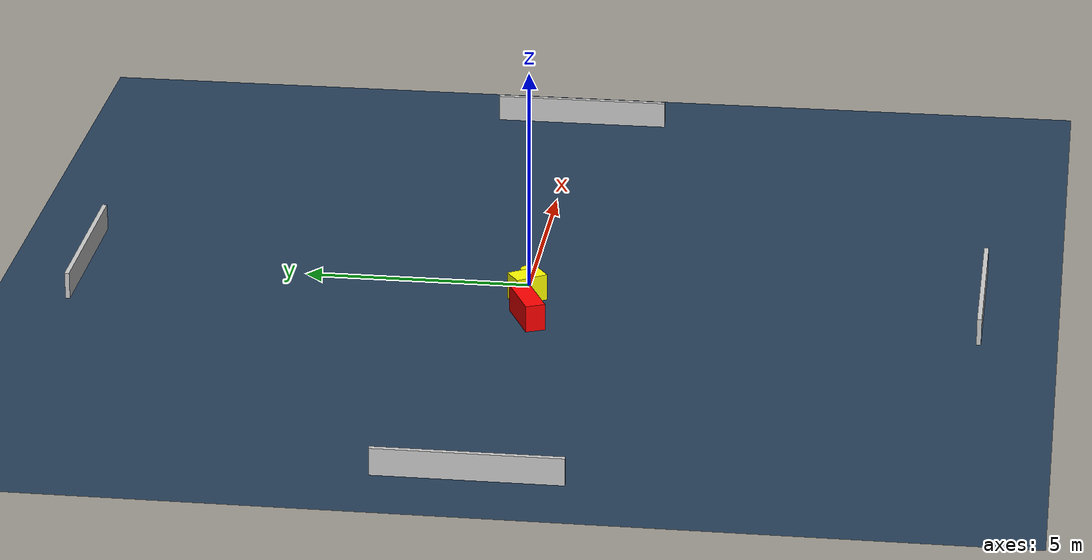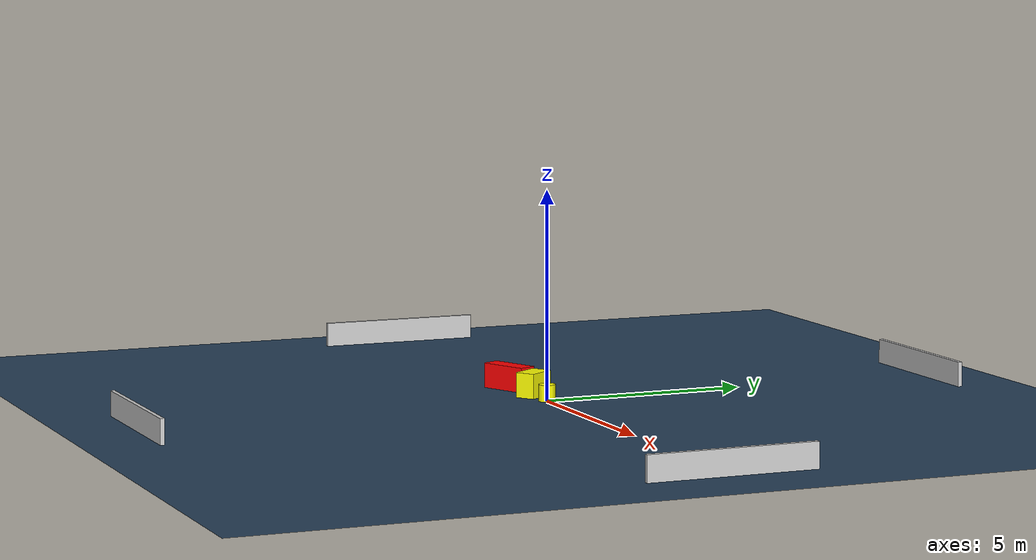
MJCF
<?xml version="1.0" ?>
<mujoco model="generated_environment">
  <option timestep="0.01" integrator="RK4" cone="elliptic"/>
  <default>
    <geom density="1"/>
  </default>
  <asset>
    <texture builtin="gradient" height="3072" name="skybox" rgb1="0.3 0.5 0.7" rgb2="0 0 0" type="skybox" width="512"/>
    <texture builtin="checker" height="300" name="groundplane" rgb1="0.2 0.3 0.4" rgb2="0.1 0.2 0.3" type="2d" width="300"/>
    <material name="groundplane" reflectance="0.2" texrepeat="5 5" texture="groundplane"/>
  </asset>
  <worldbody>
    <light dir="0 0 -1" directional="true" pos="0 0 1.5"/>
    <geom condim="3" friction="0.5 0.005 0.001" material="groundplane" name="floor" pos="0 0 0" size="0 0 0.05" type="plane"/>
    <body name="walls">
      <geom name="wall_1" condim="4" pos="-10.0 0.0 0.3" rgba="0.800000011920929 0.800000011920929 0.800000011920929 1.0" size="0.05 2.0 0.3" type="box"/>
      <geom name="wall_2" condim="4" pos="10.0 0.0 0.3" rgba="0.800000011920929 0.800000011920929 0.800000011920929 1.0" size="0.05 2.0 0.3" type="box"/>
      <geom name="wall_3" condim="4" pos="0.0 -10.0 0.3" rgba="0.800000011920929 0.800000011920929 0.800000011920929 1.0" size="2.0 0.05 0.3" type="box"/>
      <geom name="wall_4" condim="4" pos="0.0 10.0 0.3" rgba="0.800000011920929 0.800000011920929 0.800000011920929 1.0" size="2.0 0.05 0.3" type="box"/>
    </body>
    <body name="robot">
      <joint name="joint_x" type="slide" pos="0 0 0" axis="1 0 0"/>
      <joint name="joint_y" type="slide" pos="0 0 0" axis="0 1 0"/>
      <geom name="robot" type="cylinder" pos="0.0 0.0 0.2" size="0.2 0.2 0.0" mass="5.0" friction="1.0 0.005 0.0001" condim="4" rgba="1.0 1.0 0.0 1.0"/>
    </body>
    <body name="obstacle_1_movable">
      <geom name="obstacle_1_movable" condim="4" pos="-0.745016888523192 -0.0435739198485436 0.3" euler="0 0 124.15926531959909" friction="0.0 0.005 0.001" rgba="1.0 1.0 0.0 1.0" size="0.36877912598160456 0.24408728349028772 0.3" type="box" mass="0.1"/>
      <joint type="free"/>
    </body>
    <body name="obstacle_2_static">
      <geom name="obstacle_2_static" condim="4" pos="-1.902815384556631 -0.18951311797592746 0.3" euler="0 0 204.06237384750258" friction="0.0 0.005 0.001" rgba="1.0 0.0 0.0 1.0" size="0.6152975309688966 0.21857359250656846 0.3" type="box"/>
    </body>
  </worldbody>
  <actuator>
    <motor name="actuator_x" joint="joint_x" gear="1" ctrlrange="-1 1"/>
    <motor name="actuator_y" joint="joint_y" gear="1" ctrlrange="-1 1"/>
  </actuator>
</mujoco>
